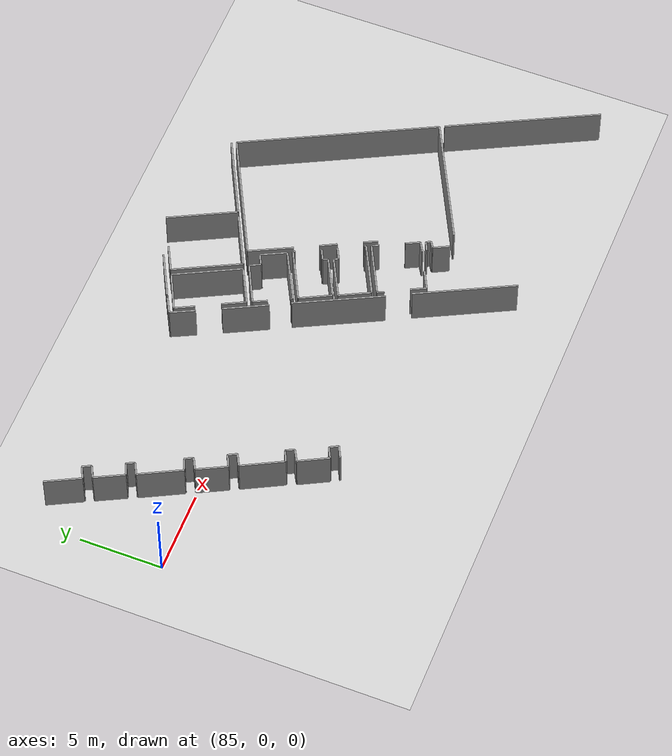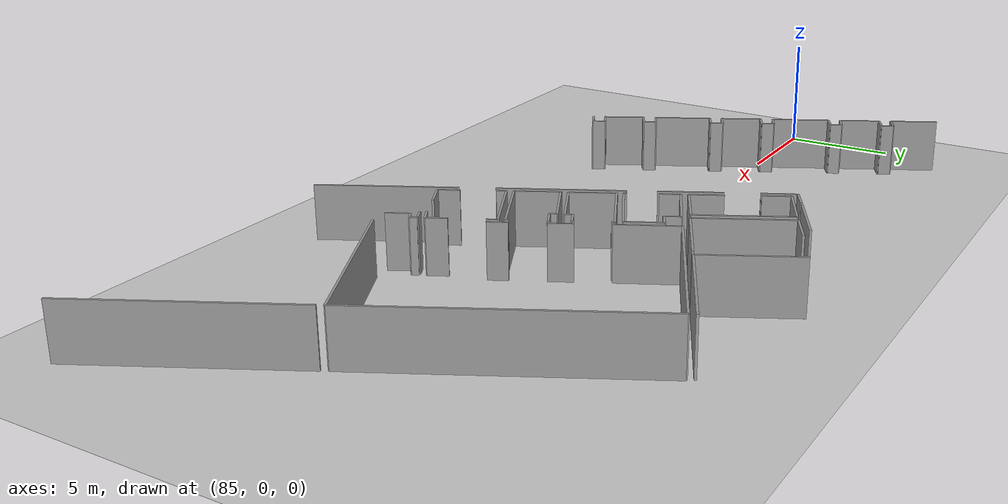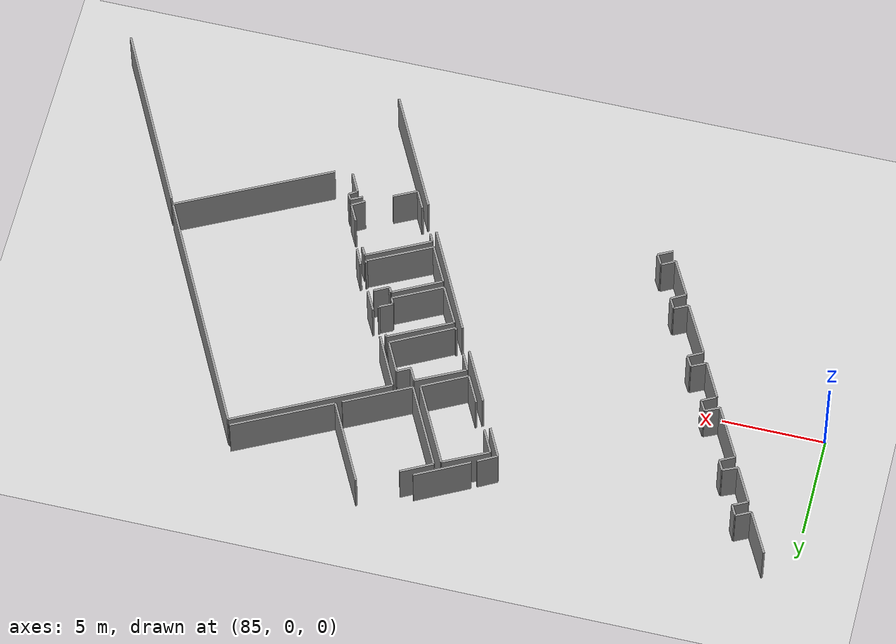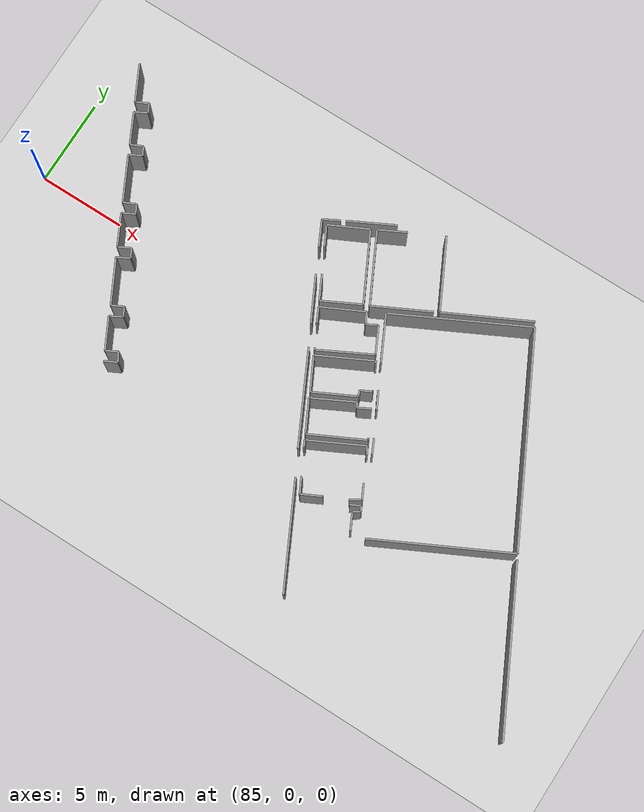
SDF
<sdf version="1.6">
 <world name="default">
  <model name="ground_plane">
   <static>1</static>
   <link name="link">
    <collision name="collision">
     <geometry><plane><normal>0 0 1</normal><size>100 100</size></plane></geometry>
     <surface><friction><ode><mu>100</mu><mu2>50</mu2></ode></friction></surface>
    </collision>
    <visual name="visual">
     <cast_shadows>0</cast_shadows>
     <geometry><plane><normal>0 0 1</normal><size>100 100</size></plane></geometry>
     <material>
      <script><uri>file://media/materials/scripts/gazebo.material</uri><name>Gazebo/Grey</name></script>
     </material>
    </visual>
   </link>
  </model>
  <model name="0510045925_40">
   <static>1</static>
   <link name="Wall_5">
    <collision name="Wall_5_Collision">
     <geometry><box><size>0.778104370099 0.1 2.5</size></box></geometry>
     <pose>0.389052185049 0 1.25 0 0 0</pose>
    </collision>
    <visual name="Wall_5_Visual">
     <pose>0.389052185049 0 1.25 0 0 0</pose>
     <geometry><box><size>0.778104370099 0.1 2.5</size></box></geometry>
     <material>
      <script><uri>file://media/materials/scripts/gazebo.material</uri><name>Gazebo/Grey</name></script>
      <ambient>1 1 1 1</ambient>
     </material>
    </visual>
    <pose>228.029288597 -108.321793863 0 0 0 0.473858778521</pose>
   </link>
   <link name="Wall_6">
    <collision name="Wall_6_Collision">
     <geometry><box><size>0.581597389892 0.1 2.5</size></box></geometry>
     <pose>0.290798694946 0 1.25 0 0 0</pose>
    </collision>
    <visual name="Wall_6_Visual">
     <pose>0.290798694946 0 1.25 0 0 0</pose>
     <geometry><box><size>0.581597389892 0.1 2.5</size></box></geometry>
     <material>
      <script><uri>file://media/materials/scripts/gazebo.material</uri><name>Gazebo/Grey</name></script>
      <ambient>1 1 1 1</ambient>
     </material>
    </visual>
    <pose>228.721656811 -107.966726733 0 0 0 2.0869654539</pose>
   </link>
   <link name="Wall_7">
    <collision name="Wall_7_Collision">
     <geometry><box><size>0.726857100754 0.1 2.5</size></box></geometry>
     <pose>0.363428550377 0 1.25 0 0 0</pose>
    </collision>
    <visual name="Wall_7_Visual">
     <pose>0.363428550377 0 1.25 0 0 0</pose>
     <geometry><box><size>0.726857100754 0.1 2.5</size></box></geometry>
     <material>
      <script><uri>file://media/materials/scripts/gazebo.material</uri><name>Gazebo/Grey</name></script>
      <ambient>1 1 1 1</ambient>
     </material>
    </visual>
    <pose>228.434608259 -107.460902008 0 0 0 -2.6538946999</pose>
   </link>
   <link name="Wall_8">
    <collision name="Wall_8_Collision">
     <geometry><box><size>1.91594491801 0.1 2.5</size></box></geometry>
     <pose>0.957972459005 0 1.25 0 0 0</pose>
    </collision>
    <visual name="Wall_8_Visual">
     <pose>0.957972459005 0 1.25 0 0 0</pose>
     <geometry><box><size>1.91594491801 0.1 2.5</size></box></geometry>
     <material>
      <script><uri>file://media/materials/scripts/gazebo.material</uri><name>Gazebo/Grey</name></script>
      <ambient>1 1 1 1</ambient>
     </material>
    </visual>
    <pose>227.792492576 -107.8015025 0 0 0 2.05363930257</pose>
   </link>
   <link name="Wall_9">
    <collision name="Wall_9_Collision">
     <geometry><box><size>0.787025181218 0.1 2.5</size></box></geometry>
     <pose>0.393512590609 0 1.25 0 0 0</pose>
    </collision>
    <visual name="Wall_9_Visual">
     <pose>0.393512590609 0 1.25 0 0 0</pose>
     <geometry><box><size>0.787025181218 0.1 2.5</size></box></geometry>
     <material>
      <script><uri>file://media/materials/scripts/gazebo.material</uri><name>Gazebo/Grey</name></script>
      <ambient>1 1 1 1</ambient>
     </material>
    </visual>
    <pose>226.902921246 -106.104591254 0 0 0 0.511546260567</pose>
   </link>
   <link name="Wall_10">
    <collision name="Wall_10_Collision">
     <geometry><box><size>0.563663164975 0.1 2.5</size></box></geometry>
     <pose>0.281831582488 0 1.25 0 0 0</pose>
    </collision>
    <visual name="Wall_10_Visual">
     <pose>0.281831582488 0 1.25 0 0 0</pose>
     <geometry><box><size>0.563663164975 0.1 2.5</size></box></geometry>
     <material>
      <script><uri>file://media/materials/scripts/gazebo.material</uri><name>Gazebo/Grey</name></script>
      <ambient>1 1 1 1</ambient>
     </material>
    </visual>
    <pose>227.589198244 -105.719321845 0 0 0 2.06324338436</pose>
   </link>
   <link name="Wall_11">
    <collision name="Wall_11_Collision">
     <geometry><box><size>0.741177250141 0.1 2.5</size></box></geometry>
     <pose>0.37058862507 0 1.25 0 0 0</pose>
    </collision>
    <visual name="Wall_11_Visual">
     <pose>0.37058862507 0 1.25 0 0 0</pose>
     <geometry><box><size>0.741177250141 0.1 2.5</size></box></geometry>
     <material>
      <script><uri>file://media/materials/scripts/gazebo.material</uri><name>Gazebo/Grey</name></script>
      <ambient>1 1 1 1</ambient>
     </material>
    </visual>
    <pose>227.322707545 -105.222633943 0 0 0 -2.6802421309</pose>
   </link>
   <link name="Wall_12">
    <collision name="Wall_12_Collision">
     <geometry><box><size>2.69067055951 0.1 2.5</size></box></geometry>
     <pose>1.34533527976 0 1.25 0 0 0</pose>
    </collision>
    <visual name="Wall_12_Visual">
     <pose>1.34533527976 0 1.25 0 0 0</pose>
     <geometry><box><size>2.69067055951 0.1 2.5</size></box></geometry>
     <material>
      <script><uri>file://media/materials/scripts/gazebo.material</uri><name>Gazebo/Grey</name></script>
      <ambient>1 1 1 1</ambient>
     </material>
    </visual>
    <pose>226.659018807 -105.552574808 0 0 0 2.05435607523</pose>
   </link>
   <link name="Wall_13">
    <collision name="Wall_13_Collision">
     <geometry><box><size>0.799349535759 0.1 2.5</size></box></geometry>
     <pose>0.399674767879 0 1.25 0 0 0</pose>
    </collision>
    <visual name="Wall_13_Visual">
     <pose>0.399674767879 0 1.25 0 0 0</pose>
     <geometry><box><size>0.799349535759 0.1 2.5</size></box></geometry>
     <material>
      <script><uri>file://media/materials/scripts/gazebo.material</uri><name>Gazebo/Grey</name></script>
      <ambient>1 1 1 1</ambient>
     </material>
    </visual>
    <pose>225.408035329 -103.170401766 0 0 0 0.484522292641</pose>
   </link>
   <link name="Wall_14">
    <collision name="Wall_14_Collision">
     <geometry><box><size>0.570283938303 0.1 2.5</size></box></geometry>
     <pose>0.285141969151 0 1.25 0 0 0</pose>
    </collision>
    <visual name="Wall_14_Visual">
     <pose>0.285141969151 0 1.25 0 0 0</pose>
     <geometry><box><size>0.570283938303 0.1 2.5</size></box></geometry>
     <material>
      <script><uri>file://media/materials/scripts/gazebo.material</uri><name>Gazebo/Grey</name></script>
      <ambient>1 1 1 1</ambient>
     </material>
    </visual>
    <pose>226.115377782 -102.798076191 0 0 0 2.0762522287</pose>
   </link>
   <link name="Wall_15">
    <collision name="Wall_15_Collision">
     <geometry><box><size>0.782158885172 0.1 2.5</size></box></geometry>
     <pose>0.391079442586 0 1.25 0 0 0</pose>
    </collision>
    <visual name="Wall_15_Visual">
     <pose>0.391079442586 0 1.25 0 0 0</pose>
     <geometry><box><size>0.782158885172 0.1 2.5</size></box></geometry>
     <material>
      <script><uri>file://media/materials/scripts/gazebo.material</uri><name>Gazebo/Grey</name></script>
      <ambient>1 1 1 1</ambient>
     </material>
    </visual>
    <pose>225.839242659 -102.299104084 0 0 0 -2.68273386301</pose>
   </link>
   <link name="Wall_16">
    <collision name="Wall_16_Collision">
     <geometry><box><size>1.90896719742 0.1 2.5</size></box></geometry>
     <pose>0.954483598711 0 1.25 0 0 0</pose>
    </collision>
    <visual name="Wall_16_Visual">
     <pose>0.954483598711 0 1.25 0 0 0</pose>
     <geometry><box><size>1.90896719742 0.1 2.5</size></box></geometry>
     <material>
      <script><uri>file://media/materials/scripts/gazebo.material</uri><name>Gazebo/Grey</name></script>
      <ambient>1 1 1 1</ambient>
     </material>
    </visual>
    <pose>225.137991422 -102.645541991 0 0 0 2.04312489266</pose>
   </link>
   <link name="Wall_17">
    <collision name="Wall_17_Collision">
     <geometry><box><size>0.782379565723 0.1 2.5</size></box></geometry>
     <pose>0.391189782861 0 1.25 0 0 0</pose>
    </collision>
    <visual name="Wall_17_Visual">
     <pose>0.391189782861 0 1.25 0 0 0</pose>
     <geometry><box><size>0.782379565723 0.1 2.5</size></box></geometry>
     <material>
      <script><uri>file://media/materials/scripts/gazebo.material</uri><name>Gazebo/Grey</name></script>
      <ambient>1 1 1 1</ambient>
     </material>
    </visual>
    <pose>224.269485546 -100.945585137 0 0 0 0.48787737505</pose>
   </link>
   <link name="Wall_18">
    <collision name="Wall_18_Collision">
     <geometry><box><size>0.561334838609 0.1 2.5</size></box></geometry>
     <pose>0.280667419305 0 1.25 0 0 0</pose>
    </collision>
    <visual name="Wall_18_Visual">
     <pose>0.280667419305 0 1.25 0 0 0</pose>
     <geometry><box><size>0.561334838609 0.1 2.5</size></box></geometry>
     <material>
      <script><uri>file://media/materials/scripts/gazebo.material</uri><name>Gazebo/Grey</name></script>
      <ambient>1 1 1 1</ambient>
     </material>
    </visual>
    <pose>224.960584757 -100.578843177 0 0 0 2.07732392966</pose>
   </link>
   <link name="Wall_19">
    <collision name="Wall_19_Collision">
     <geometry><box><size>0.754889877876 0.1 2.5</size></box></geometry>
     <pose>0.377444938938 0 1.25 0 0 0</pose>
    </collision>
    <visual name="Wall_19_Visual">
     <pose>0.377444938938 0 1.25 0 0 0</pose>
     <geometry><box><size>0.754889877876 0.1 2.5</size></box></geometry>
     <material>
      <script><uri>file://media/materials/scripts/gazebo.material</uri><name>Gazebo/Grey</name></script>
      <ambient>1 1 1 1</ambient>
     </material>
    </visual>
    <pose>224.688256643 -100.087992691 0 0 0 -2.70711847416</pose>
   </link>
   <link name="Wall_20">
    <collision name="Wall_20_Collision">
     <geometry><box><size>2.73524635126 0.1 2.5</size></box></geometry>
     <pose>1.36762317563 0 1.25 0 0 0</pose>
    </collision>
    <visual name="Wall_20_Visual">
     <pose>1.36762317563 0 1.25 0 0 0</pose>
     <geometry><box><size>2.73524635126 0.1 2.5</size></box></geometry>
     <material>
      <script><uri>file://media/materials/scripts/gazebo.material</uri><name>Gazebo/Grey</name></script>
      <ambient>1 1 1 1</ambient>
     </material>
    </visual>
    <pose>224.003502449 -100.405751123 0 0 0 2.04863620994</pose>
   </link>
   <link name="Wall_21">
    <collision name="Wall_21_Collision">
     <geometry><box><size>0.783026056674 0.1 2.5</size></box></geometry>
     <pose>0.391513028337 0 1.25 0 0 0</pose>
    </collision>
    <visual name="Wall_21_Visual">
     <pose>0.391513028337 0 1.25 0 0 0</pose>
     <geometry><box><size>0.783026056674 0.1 2.5</size></box></geometry>
     <material>
      <script><uri>file://media/materials/scripts/gazebo.material</uri><name>Gazebo/Grey</name></script>
      <ambient>1 1 1 1</ambient>
     </material>
    </visual>
    <pose>222.745666354 -97.9768787594 0 0 0 0.485972448017</pose>
   </link>
   <link name="Wall_22">
    <collision name="Wall_22_Collision">
     <geometry><box><size>0.527831800195 0.1 2.5</size></box></geometry>
     <pose>0.263915900097 0 1.25 0 0 0</pose>
    </collision>
    <visual name="Wall_22_Visual">
     <pose>0.263915900097 0 1.25 0 0 0</pose>
     <geometry><box><size>0.527831800195 0.1 2.5</size></box></geometry>
     <material>
      <script><uri>file://media/materials/scripts/gazebo.material</uri><name>Gazebo/Grey</name></script>
      <ambient>1 1 1 1</ambient>
     </material>
    </visual>
    <pose>223.438034568 -97.6111520012 0 0 0 2.05874545323</pose>
   </link>
   <link name="Wall_23">
    <collision name="Wall_23_Collision">
     <geometry><box><size>0.759749015765 0.1 2.5</size></box></geometry>
     <pose>0.379874507883 0 1.25 0 0 0</pose>
    </collision>
    <visual name="Wall_23_Visual">
     <pose>0.379874507883 0 1.25 0 0 0</pose>
     <geometry><box><size>0.759749015765 0.1 2.5</size></box></geometry>
     <material>
      <script><uri>file://media/materials/scripts/gazebo.material</uri><name>Gazebo/Grey</name></script>
      <ambient>1 1 1 1</ambient>
     </material>
    </visual>
    <pose>223.190578919 -97.1449201797 0 0 0 -2.72876139295</pose>
   </link>
   <link name="Wall_24">
    <collision name="Wall_24_Collision">
     <geometry><box><size>1.88806659486 0.1 2.5</size></box></geometry>
     <pose>0.944033297428 0 1.25 0 0 0</pose>
    </collision>
    <visual name="Wall_24_Visual">
     <pose>0.944033297428 0 1.25 0 0 0</pose>
     <geometry><box><size>1.88806659486 0.1 2.5</size></box></geometry>
     <material>
      <script><uri>file://media/materials/scripts/gazebo.material</uri><name>Gazebo/Grey</name></script>
      <ambient>1 1 1 1</ambient>
     </material>
    </visual>
    <pose>222.494657496 -97.4497347783 0 0 0 2.04213886628</pose>
   </link>
   <link name="Wall_25">
    <collision name="Wall_25_Collision">
     <geometry><box><size>0.787326807375 0.1 2.5</size></box></geometry>
     <pose>0.393663403687 0 1.25 0 0 0</pose>
    </collision>
    <visual name="Wall_25_Visual">
     <pose>0.393663403687 0 1.25 0 0 0</pose>
     <geometry><box><size>0.787326807375 0.1 2.5</size></box></geometry>
     <material>
      <script><uri>file://media/materials/scripts/gazebo.material</uri><name>Gazebo/Grey</name></script>
      <ambient>1 1 1 1</ambient>
     </material>
    </visual>
    <pose>221.63731885 -95.767543971 0 0 0 0.47691096038</pose>
   </link>
   <link name="Wall_26">
    <collision name="Wall_26_Collision">
     <geometry><box><size>0.560734072792 0.1 2.5</size></box></geometry>
     <pose>0.280367036396 0 1.25 0 0 0</pose>
    </collision>
    <visual name="Wall_26_Visual">
     <pose>0.280367036396 0 1.25 0 0 0</pose>
     <geometry><box><size>0.560734072792 0.1 2.5</size></box></geometry>
     <material>
      <script><uri>file://media/materials/scripts/gazebo.material</uri><name>Gazebo/Grey</name></script>
      <ambient>1 1 1 1</ambient>
     </material>
    </visual>
    <pose>222.336793482 -95.4061318241 0 0 0 2.04456504768</pose>
   </link>
   <link name="Wall_27">
    <collision name="Wall_27_Collision">
     <geometry><box><size>0.781128396925 0.1 2.5</size></box></geometry>
     <pose>0.390564198462 0 1.25 0 0 0</pose>
    </collision>
    <visual name="Wall_27_Visual">
     <pose>0.390564198462 0 1.25 0 0 0</pose>
     <geometry><box><size>0.781128396925 0.1 2.5</size></box></geometry>
     <material>
      <script><uri>file://media/materials/scripts/gazebo.material</uri><name>Gazebo/Grey</name></script>
      <ambient>1 1 1 1</ambient>
     </material>
    </visual>
    <pose>222.080962412 -94.9071597168 0 0 0 -2.67809035118</pose>
   </link>
   <link name="Wall_28">
    <collision name="Wall_28_Collision">
     <geometry><box><size>2.24060761237 0.1 2.5</size></box></geometry>
     <pose>1.12030380618 0 1.25 0 0 0</pose>
    </collision>
    <visual name="Wall_28_Visual">
     <pose>1.12030380618 0 1.25 0 0 0</pose>
     <geometry><box><size>2.24060761237 0.1 2.5</size></box></geometry>
     <material>
      <script><uri>file://media/materials/scripts/gazebo.material</uri><name>Gazebo/Grey</name></script>
      <ambient>1 1 1 1</ambient>
     </material>
    </visual>
    <pose>221.382249181 -95.2563894317 0 0 0 2.04675396799</pose>
   </link>
   <link name="Wall_205">
    <collision name="Wall_205_Collision">
     <geometry><box><size>4.27731627316 0.1 2.5</size></box></geometry>
     <pose>2.13865813658 0 1.25 0 0 0</pose>
    </collision>
    <visual name="Wall_205_Visual">
     <pose>2.13865813658 0 1.25 0 0 0</pose>
     <geometry><box><size>4.27731627316 0.1 2.5</size></box></geometry>
     <material>
      <script><uri>file://media/materials/scripts/gazebo.material</uri><name>Gazebo/Grey</name></script>
      <ambient>1 1 1 1</ambient>
     </material>
    </visual>
    <pose>238.416842212 -98.1030176899 0 0 0 2.03996346365</pose>
   </link>
   <link name="Wall_206">
    <collision name="Wall_206_Collision">
     <geometry><box><size>1.66259343177 0.1 2.5</size></box></geometry>
     <pose>0.831296715885 0 1.25 0 0 0</pose>
    </collision>
    <visual name="Wall_206_Visual">
     <pose>0.831296715885 0 1.25 0 0 0</pose>
     <geometry><box><size>1.66259343177 0.1 2.5</size></box></geometry>
     <material>
      <script><uri>file://media/materials/scripts/gazebo.material</uri><name>Gazebo/Grey</name></script>
      <ambient>1 1 1 1</ambient>
     </material>
    </visual>
    <pose>236.482881145 -94.2878860943 0 0 0 0.480169388332</pose>
   </link>
   <link name="Wall_209">
    <collision name="Wall_209_Collision">
     <geometry><box><size>3.46521680578 0.1 2.5</size></box></geometry>
     <pose>1.73260840289 0 1.25 0 0 0</pose>
    </collision>
    <visual name="Wall_209_Visual">
     <pose>1.73260840289 0 1.25 0 0 0</pose>
     <geometry><box><size>3.46521680578 0.1 2.5</size></box></geometry>
     <material>
      <script><uri>file://media/materials/scripts/gazebo.material</uri><name>Gazebo/Grey</name></script>
      <ambient>1 1 1 1</ambient>
     </material>
    </visual>
    <pose>241.505596305 -96.5322453745 0 0 0 -2.671131956</pose>
   </link>
   <link name="Wall_210">
    <collision name="Wall_210_Collision">
     <geometry><box><size>4.29735811285 0.1 2.5</size></box></geometry>
     <pose>2.14867905642 0 1.25 0 0 0</pose>
    </collision>
    <visual name="Wall_210_Visual">
     <pose>2.14867905642 0 1.25 0 0 0</pose>
     <geometry><box><size>4.29735811285 0.1 2.5</size></box></geometry>
     <material>
      <script><uri>file://media/materials/scripts/gazebo.material</uri><name>Gazebo/Grey</name></script>
      <ambient>1 1 1 1</ambient>
     </material>
    </visual>
    <pose>241.787315043 -96.3870713941 0 0 0 2.04223564288</pose>
   </link>
   <link name="Wall_214">
    <collision name="Wall_214_Collision">
     <geometry><box><size>5.15071164035 0.1 2.5</size></box></geometry>
     <pose>2.57535582017 0 1.25 0 0 0</pose>
    </collision>
    <visual name="Wall_214_Visual">
     <pose>2.57535582017 0 1.25 0 0 0</pose>
     <geometry><box><size>5.15071164035 0.1 2.5</size></box></geometry>
     <material>
      <script><uri>file://media/materials/scripts/gazebo.material</uri><name>Gazebo/Grey</name></script>
      <ambient>1 1 1 1</ambient>
     </material>
    </visual>
    <pose>246.383645085 -94.0625111038 0 0 0 -2.67336145872</pose>
   </link>
   <link name="Wall_221">
    <collision name="Wall_221_Collision">
     <geometry><box><size>2.83431875262 0.1 2.5</size></box></geometry>
     <pose>1.41715937631 0 1.25 0 0 0</pose>
    </collision>
    <visual name="Wall_221_Visual">
     <pose>1.41715937631 0 1.25 0 0 0</pose>
     <geometry><box><size>2.83431875262 0.1 2.5</size></box></geometry>
     <material>
      <script><uri>file://media/materials/scripts/gazebo.material</uri><name>Gazebo/Grey</name></script>
      <ambient>1 1 1 1</ambient>
     </material>
    </visual>
    <pose>234.777340677 -94.7825435903 0 0 0 0.477183567858</pose>
   </link>
   <link name="Wall_222">
    <collision name="Wall_222_Collision">
     <geometry><box><size>2.38766779166 0.1 2.5</size></box></geometry>
     <pose>1.19383389583 0 1.25 0 0 0</pose>
    </collision>
    <visual name="Wall_222_Visual">
     <pose>1.19383389583 0 1.25 0 0 0</pose>
     <geometry><box><size>2.38766779166 0.1 2.5</size></box></geometry>
     <material>
      <script><uri>file://media/materials/scripts/gazebo.material</uri><name>Gazebo/Grey</name></script>
      <ambient>1 1 1 1</ambient>
     </material>
    </visual>
    <pose>234.026090708 -95.5208497246 0 0 0 0.45993969673</pose>
   </link>
   <link name="Wall_223">
    <collision name="Wall_223_Collision">
     <geometry><box><size>4.22908114276 0.1 2.5</size></box></geometry>
     <pose>2.11454057138 0 1.25 0 0 0</pose>
    </collision>
    <visual name="Wall_223_Visual">
     <pose>2.11454057138 0 1.25 0 0 0</pose>
     <geometry><box><size>4.22908114276 0.1 2.5</size></box></geometry>
     <material>
      <script><uri>file://media/materials/scripts/gazebo.material</uri><name>Gazebo/Grey</name></script>
      <ambient>1 1 1 1</ambient>
     </material>
    </visual>
    <pose>236.165630314 -94.4609781478 0 0 0 -1.09786238857</pose>
   </link>
   <link name="Wall_224">
    <collision name="Wall_224_Collision">
     <geometry><box><size>2.37933894703 0.1 2.5</size></box></geometry>
     <pose>1.18966947351 0 1.25 0 0 0</pose>
    </collision>
    <visual name="Wall_224_Visual">
     <pose>1.18966947351 0 1.25 0 0 0</pose>
     <geometry><box><size>2.37933894703 0.1 2.5</size></box></geometry>
     <material>
      <script><uri>file://media/materials/scripts/gazebo.material</uri><name>Gazebo/Grey</name></script>
      <ambient>1 1 1 1</ambient>
     </material>
    </visual>
    <pose>238.091977361 -98.2258572117 0 0 0 -2.66496929275</pose>
   </link>
   <link name="Wall_225">
    <collision name="Wall_225_Collision">
     <geometry><box><size>1.48373040919 0.1 2.5</size></box></geometry>
     <pose>0.741865204594 0 1.25 0 0 0</pose>
    </collision>
    <visual name="Wall_225_Visual">
     <pose>0.741865204594 0 1.25 0 0 0</pose>
     <geometry><box><size>1.48373040919 0.1 2.5</size></box></geometry>
     <material>
      <script><uri>file://media/materials/scripts/gazebo.material</uri><name>Gazebo/Grey</name></script>
      <ambient>1 1 1 1</ambient>
     </material>
    </visual>
    <pose>235.977817822 -99.3174538717 0 0 0 2.03933985751</pose>
   </link>
   <link name="Wall_226">
    <collision name="Wall_226_Collision">
     <geometry><box><size>1.24356690291 0.1 2.5</size></box></geometry>
     <pose>0.621783451455 0 1.25 0 0 0</pose>
    </collision>
    <visual name="Wall_226_Visual">
     <pose>0.621783451455 0 1.25 0 0 0</pose>
     <geometry><box><size>1.24356690291 0.1 2.5</size></box></geometry>
     <material>
      <script><uri>file://media/materials/scripts/gazebo.material</uri><name>Gazebo/Grey</name></script>
      <ambient>1 1 1 1</ambient>
     </material>
    </visual>
    <pose>234.589528185 -96.6294510292 0 0 0 2.0410155827</pose>
   </link>
   <link name="Wall_227">
    <collision name="Wall_227_Collision">
     <geometry><box><size>2.58731230767 0.1 2.5</size></box></geometry>
     <pose>1.29365615383 0 1.25 0 0 0</pose>
    </collision>
    <visual name="Wall_227_Visual">
     <pose>1.29365615383 0 1.25 0 0 0</pose>
     <geometry><box><size>2.58731230767 0.1 2.5</size></box></geometry>
     <material>
      <script><uri>file://media/materials/scripts/gazebo.material</uri><name>Gazebo/Grey</name></script>
      <ambient>1 1 1 1</ambient>
     </material>
    </visual>
    <pose>236.127560214 -99.617953859 0 0 0 0.461015458905</pose>
   </link>
   <link name="Wall_228">
    <collision name="Wall_228_Collision">
     <geometry><box><size>0.70123631037 0.1 2.5</size></box></geometry>
     <pose>0.350618155185 0 1.25 0 0 0</pose>
    </collision>
    <visual name="Wall_228_Visual">
     <pose>0.350618155185 0 1.25 0 0 0</pose>
     <geometry><box><size>0.70123631037 0.1 2.5</size></box></geometry>
     <material>
      <script><uri>file://media/materials/scripts/gazebo.material</uri><name>Gazebo/Grey</name></script>
      <ambient>1 1 1 1</ambient>
     </material>
    </visual>
    <pose>238.444760285 -98.4669678435 0 0 0 -1.08092416128</pose>
   </link>
   <link name="Wall_229">
    <collision name="Wall_229_Collision">
     <geometry><box><size>0.69720848903 0.1 2.5</size></box></geometry>
     <pose>0.348604244515 0 1.25 0 0 0</pose>
    </collision>
    <visual name="Wall_229_Visual">
     <pose>0.348604244515 0 1.25 0 0 0</pose>
     <geometry><box><size>0.69720848903 0.1 2.5</size></box></geometry>
     <material>
      <script><uri>file://media/materials/scripts/gazebo.material</uri><name>Gazebo/Grey</name></script>
      <ambient>1 1 1 1</ambient>
     </material>
    </visual>
    <pose>238.77470115 -99.0857338646 0 0 0 0.492955175945</pose>
   </link>
   <link name="Wall_230">
    <collision name="Wall_230_Collision">
     <geometry><box><size>1.63285590378 0.1 2.5</size></box></geometry>
     <pose>0.81642795189 0 1.25 0 0 0</pose>
    </collision>
    <visual name="Wall_230_Visual">
     <pose>0.81642795189 0 1.25 0 0 0</pose>
     <geometry><box><size>1.63285590378 0.1 2.5</size></box></geometry>
     <material>
      <script><uri>file://media/materials/scripts/gazebo.material</uri><name>Gazebo/Grey</name></script>
      <ambient>1 1 1 1</ambient>
     </material>
    </visual>
    <pose>239.388898759 -98.7557930002 0 0 0 -1.10666213365</pose>
   </link>
   <link name="Wall_231">
    <collision name="Wall_231_Collision">
     <geometry><box><size>3.27823236941 0.1 2.5</size></box></geometry>
     <pose>1.63911618471 0 1.25 0 0 0</pose>
    </collision>
    <visual name="Wall_231_Visual">
     <pose>1.63911618471 0 1.25 0 0 0</pose>
     <geometry><box><size>3.27823236941 0.1 2.5</size></box></geometry>
     <material>
      <script><uri>file://media/materials/scripts/gazebo.material</uri><name>Gazebo/Grey</name></script>
      <ambient>1 1 1 1</ambient>
     </material>
    </visual>
    <pose>240.119844674 -100.215908226 0 0 0 -2.65876257941</pose>
   </link>
   <link name="Wall_232">
    <collision name="Wall_232_Collision">
     <geometry><box><size>0.131634247658 0.1 2.5</size></box></geometry>
     <pose>0.0658171238288 0 1.25 0 0 0</pose>
    </collision>
    <visual name="Wall_232_Visual">
     <pose>0.0658171238288 0 1.25 0 0 0</pose>
     <geometry><box><size>0.131634247658 0.1 2.5</size></box></geometry>
     <material>
      <script><uri>file://media/materials/scripts/gazebo.material</uri><name>Gazebo/Grey</name></script>
      <ambient>1 1 1 1</ambient>
     </material>
    </visual>
    <pose>237.216365067 -101.737950813 0 0 0 2.16414647295</pose>
   </link>
   <link name="Wall_233">
    <collision name="Wall_233_Collision">
     <geometry><box><size>0.90010988175 0.1 2.5</size></box></geometry>
     <pose>0.450054940875 0 1.25 0 0 0</pose>
    </collision>
    <visual name="Wall_233_Visual">
     <pose>0.450054940875 0 1.25 0 0 0</pose>
     <geometry><box><size>0.90010988175 0.1 2.5</size></box></geometry>
     <material>
      <script><uri>file://media/materials/scripts/gazebo.material</uri><name>Gazebo/Grey</name></script>
      <ambient>1 1 1 1</ambient>
     </material>
    </visual>
    <pose>236.523489252 -100.426308977 0 0 0 2.02624739805</pose>
   </link>
   <link name="Wall_234">
    <collision name="Wall_234_Collision">
     <geometry><box><size>2.02104688602 0.1 2.5</size></box></geometry>
     <pose>1.01052344301 0 1.25 0 0 0</pose>
    </collision>
    <visual name="Wall_234_Visual">
     <pose>1.01052344301 0 1.25 0 0 0</pose>
     <geometry><box><size>2.02104688602 0.1 2.5</size></box></geometry>
     <material>
      <script><uri>file://media/materials/scripts/gazebo.material</uri><name>Gazebo/Grey</name></script>
      <ambient>1 1 1 1</ambient>
     </material>
    </visual>
    <pose>238.269637826 -103.802873024 0 0 0 2.04977636711</pose>
   </link>
   <link name="Wall_235">
    <collision name="Wall_235_Collision">
     <geometry><box><size>3.33983407108 0.1 2.5</size></box></geometry>
     <pose>1.66991703554 0 1.25 0 0 0</pose>
    </collision>
    <visual name="Wall_235_Visual">
     <pose>1.66991703554 0 1.25 0 0 0</pose>
     <geometry><box><size>3.33983407108 0.1 2.5</size></box></geometry>
     <material>
      <script><uri>file://media/materials/scripts/gazebo.material</uri><name>Gazebo/Grey</name></script>
      <ambient>1 1 1 1</ambient>
     </material>
    </visual>
    <pose>237.338189386 -102.009263724 0 0 0 0.472075903171</pose>
   </link>
   <link name="Wall_236">
    <collision name="Wall_236_Collision">
     <geometry><box><size>0.133438580926 0.1 2.5</size></box></geometry>
     <pose>0.066719290463 0 1.25 0 0 0</pose>
    </collision>
    <visual name="Wall_236_Visual">
     <pose>0.066719290463 0 1.25 0 0 0</pose>
     <geometry><box><size>0.133438580926 0.1 2.5</size></box></geometry>
     <material>
      <script><uri>file://media/materials/scripts/gazebo.material</uri><name>Gazebo/Grey</name></script>
      <ambient>1 1 1 1</ambient>
     </material>
    </visual>
    <pose>240.312733179 -100.490520545 0 0 0 -1.00917282712</pose>
   </link>
   <link name="Wall_237">
    <collision name="Wall_237_Collision">
     <geometry><box><size>0.0833336231725 0.1 2.5</size></box></geometry>
     <pose>0.0416668115862 0 1.25 0 0 0</pose>
    </collision>
    <visual name="Wall_237_Visual">
     <pose>0.0416668115862 0 1.25 0 0 0</pose>
     <geometry><box><size>0.0833336231725 0.1 2.5</size></box></geometry>
     <material>
      <script><uri>file://media/materials/scripts/gazebo.material</uri><name>Gazebo/Grey</name></script>
      <ambient>1 1 1 1</ambient>
     </material>
    </visual>
    <pose>241.028451055 -101.936930535 0 0 0 -1.13030534076</pose>
   </link>
   <link name="Wall_238">
    <collision name="Wall_238_Collision">
     <geometry><box><size>0.70031509564 0.1 2.5</size></box></geometry>
     <pose>0.35015754782 0 1.25 0 0 0</pose>
    </collision>
    <visual name="Wall_238_Visual">
     <pose>0.35015754782 0 1.25 0 0 0</pose>
     <geometry><box><size>0.70031509564 0.1 2.5</size></box></geometry>
     <material>
      <script><uri>file://media/materials/scripts/gazebo.material</uri><name>Gazebo/Grey</name></script>
      <ambient>1 1 1 1</ambient>
     </material>
    </visual>
    <pose>241.063983148 -102.012309332 0 0 0 -2.67956578871</pose>
   </link>
   <link name="Wall_239">
    <collision name="Wall_239_Collision">
     <geometry><box><size>0.333976988393 0.1 2.5</size></box></geometry>
     <pose>0.166988494197 0 1.25 0 0 0</pose>
    </collision>
    <visual name="Wall_239_Visual">
     <pose>0.166988494197 0 1.25 0 0 0</pose>
     <geometry><box><size>0.333976988393 0.1 2.5</size></box></geometry>
     <material>
      <script><uri>file://media/materials/scripts/gazebo.material</uri><name>Gazebo/Grey</name></script>
      <ambient>1 1 1 1</ambient>
     </material>
    </visual>
    <pose>240.437095505 -102.32448415 0 0 0 -1.14794240066</pose>
   </link>
   <link name="Wall_240">
    <collision name="Wall_240_Collision">
     <geometry><box><size>2.58624029531 0.1 2.5</size></box></geometry>
     <pose>1.29312014765 0 1.25 0 0 0</pose>
    </collision>
    <visual name="Wall_240_Visual">
     <pose>1.29312014765 0 1.25 0 0 0</pose>
     <geometry><box><size>2.58624029531 0.1 2.5</size></box></geometry>
     <material>
      <script><uri>file://media/materials/scripts/gazebo.material</uri><name>Gazebo/Grey</name></script>
      <ambient>1 1 1 1</ambient>
     </material>
    </visual>
    <pose>240.574147864 -102.629044948 0 0 0 -2.67048413409</pose>
   </link>
   <link name="Wall_241">
    <collision name="Wall_241_Collision">
     <geometry><box><size>1.97302155722 0.1 2.5</size></box></geometry>
     <pose>0.986510778612 0 1.25 0 0 0</pose>
    </collision>
    <visual name="Wall_241_Visual">
     <pose>0.986510778612 0 1.25 0 0 0</pose>
     <geometry><box><size>1.97302155722 0.1 2.5</size></box></geometry>
     <material>
      <script><uri>file://media/materials/scripts/gazebo.material</uri><name>Gazebo/Grey</name></script>
      <ambient>1 1 1 1</ambient>
     </material>
    </visual>
    <pose>239.287378493 -105.865003426 0 0 0 2.04502920376</pose>
   </link>
   <link name="Wall_242">
    <collision name="Wall_242_Collision">
     <geometry><box><size>2.58004899284 0.1 2.5</size></box></geometry>
     <pose>1.29002449642 0 1.25 0 0 0</pose>
    </collision>
    <visual name="Wall_242_Visual">
     <pose>1.29002449642 0 1.25 0 0 0</pose>
     <geometry><box><size>2.58004899284 0.1 2.5</size></box></geometry>
     <material>
      <script><uri>file://media/materials/scripts/gazebo.material</uri><name>Gazebo/Grey</name></script>
      <ambient>1 1 1 1</ambient>
     </material>
    </visual>
    <pose>238.386386132 -104.109718027 0 0 0 0.477197749769</pose>
   </link>
   <link name="Wall_243">
    <collision name="Wall_243_Collision">
     <geometry><box><size>0.303028215887 0.1 2.5</size></box></geometry>
     <pose>0.151514107943 0 1.25 0 0 0</pose>
    </collision>
    <visual name="Wall_243_Visual">
     <pose>0.151514107943 0 1.25 0 0 0</pose>
     <geometry><box><size>0.303028215887 0.1 2.5</size></box></geometry>
     <material>
      <script><uri>file://media/materials/scripts/gazebo.material</uri><name>Gazebo/Grey</name></script>
      <ambient>1 1 1 1</ambient>
     </material>
    </visual>
    <pose>240.678206137 -102.924722723 0 0 0 -1.0539356854</pose>
   </link>
   <link name="Wall_244">
    <collision name="Wall_244_Collision">
     <geometry><box><size>0.787144503482 0.1 2.5</size></box></geometry>
     <pose>0.393572251741 0 1.25 0 0 0</pose>
    </collision>
    <visual name="Wall_244_Visual">
     <pose>0.393572251741 0 1.25 0 0 0</pose>
     <geometry><box><size>0.787144503482 0.1 2.5</size></box></geometry>
     <material>
      <script><uri>file://media/materials/scripts/gazebo.material</uri><name>Gazebo/Grey</name></script>
      <ambient>1 1 1 1</ambient>
     </material>
    </visual>
    <pose>240.827948529 -103.188167813 0 0 0 0.480663560992</pose>
   </link>
   <link name="Wall_245">
    <collision name="Wall_245_Collision">
     <geometry><box><size>0.124539342352 0.1 2.5</size></box></geometry>
     <pose>0.0622696711761 0 1.25 0 0 0</pose>
    </collision>
    <visual name="Wall_245_Visual">
     <pose>0.0622696711761 0 1.25 0 0 0</pose>
     <geometry><box><size>0.124539342352 0.1 2.5</size></box></geometry>
     <material>
      <script><uri>file://media/materials/scripts/gazebo.material</uri><name>Gazebo/Grey</name></script>
      <ambient>1 1 1 1</ambient>
     </material>
    </visual>
    <pose>242.216238167 -104.246008985 0 0 0 -1.0597390149</pose>
   </link>
   <link name="Wall_246">
    <collision name="Wall_246_Collision">
     <geometry><box><size>3.34961884048 0.1 2.5</size></box></geometry>
     <pose>1.67480942024 0 1.25 0 0 0</pose>
    </collision>
    <visual name="Wall_246_Visual">
     <pose>1.67480942024 0 1.25 0 0 0</pose>
     <geometry><box><size>3.34961884048 0.1 2.5</size></box></geometry>
     <material>
      <script><uri>file://media/materials/scripts/gazebo.material</uri><name>Gazebo/Grey</name></script>
      <ambient>1 1 1 1</ambient>
     </material>
    </visual>
    <pose>242.277150326 -104.354635669 0 0 0 -2.67381101643</pose>
   </link>
   <link name="Wall_247">
    <collision name="Wall_247_Collision">
     <geometry><box><size>0.961173510796 0.1 2.5</size></box></geometry>
     <pose>0.480586755398 0 1.25 0 0 0</pose>
    </collision>
    <visual name="Wall_247_Visual">
     <pose>0.480586755398 0 1.25 0 0 0</pose>
     <geometry><box><size>0.961173510796 0.1 2.5</size></box></geometry>
     <material>
      <script><uri>file://media/materials/scripts/gazebo.material</uri><name>Gazebo/Grey</name></script>
      <ambient>1 1 1 1</ambient>
     </material>
    </visual>
    <pose>240.769574376 -108.738788356 0 0 0 2.04223782616</pose>
   </link>
   <link name="Wall_248">
    <collision name="Wall_248_Collision">
     <geometry><box><size>0.421142800994 0.1 2.5</size></box></geometry>
     <pose>0.210571400497 0 1.25 0 0 0</pose>
    </collision>
    <visual name="Wall_248_Visual">
     <pose>0.210571400497 0 1.25 0 0 0</pose>
     <geometry><box><size>0.421142800994 0.1 2.5</size></box></geometry>
     <material>
      <script><uri>file://media/materials/scripts/gazebo.material</uri><name>Gazebo/Grey</name></script>
      <ambient>1 1 1 1</ambient>
     </material>
    </visual>
    <pose>239.609705337 -106.528945966 0 0 0 2.01962022385</pose>
   </link>
   <link name="Wall_249">
    <collision name="Wall_249_Collision">
     <geometry><box><size>3.33296649568 0.1 2.5</size></box></geometry>
     <pose>1.66648324784 0 1.25 0 0 0</pose>
    </collision>
    <visual name="Wall_249_Visual">
     <pose>1.66648324784 0 1.25 0 0 0</pose>
     <geometry><box><size>3.33296649568 0.1 2.5</size></box></geometry>
     <material>
      <script><uri>file://media/materials/scripts/gazebo.material</uri><name>Gazebo/Grey</name></script>
      <ambient>1 1 1 1</ambient>
     </material>
    </visual>
    <pose>239.426968859 -106.149513972 0 0 0 0.469709379188</pose>
   </link>
   <link name="Wall_250">
    <collision name="Wall_250_Collision">
     <geometry><box><size>0.465228734126 0.1 2.5</size></box></geometry>
     <pose>0.232614367063 0 1.25 0 0 0</pose>
    </collision>
    <visual name="Wall_250_Visual">
     <pose>0.232614367063 0 1.25 0 0 0</pose>
     <geometry><box><size>0.465228734126 0.1 2.5</size></box></geometry>
     <material>
      <script><uri>file://media/materials/scripts/gazebo.material</uri><name>Gazebo/Grey</name></script>
      <ambient>1 1 1 1</ambient>
     </material>
    </visual>
    <pose>242.398974645 -104.640922819 0 0 0 -1.07005636324</pose>
   </link>
   <link name="Wall_251">
    <collision name="Wall_251_Collision">
     <geometry><box><size>0.906232725138 0.1 2.5</size></box></geometry>
     <pose>0.453116362569 0 1.25 0 0 0</pose>
    </collision>
    <visual name="Wall_251_Visual">
     <pose>0.453116362569 0 1.25 0 0 0</pose>
     <geometry><box><size>0.906232725138 0.1 2.5</size></box></geometry>
     <material>
      <script><uri>file://media/materials/scripts/gazebo.material</uri><name>Gazebo/Grey</name></script>
      <ambient>1 1 1 1</ambient>
     </material>
    </visual>
    <pose>243.297428999 -106.426918099 0 0 0 -1.09988431652</pose>
   </link>
   <link name="Wall_252">
    <collision name="Wall_252_Collision">
     <geometry><box><size>0.687941438192 0.1 2.5</size></box></geometry>
     <pose>0.343970719096 0 1.25 0 0 0</pose>
    </collision>
    <visual name="Wall_252_Visual">
     <pose>0.343970719096 0 1.25 0 0 0</pose>
     <geometry><box><size>0.687941438192 0.1 2.5</size></box></geometry>
     <material>
      <script><uri>file://media/materials/scripts/gazebo.material</uri><name>Gazebo/Grey</name></script>
      <ambient>1 1 1 1</ambient>
     </material>
    </visual>
    <pose>243.708586076 -107.234511814 0 0 0 -2.60528575272</pose>
   </link>
   <link name="Wall_253">
    <collision name="Wall_253_Collision">
     <geometry><box><size>1.23969100422 0.1 2.5</size></box></geometry>
     <pose>0.619845502112 0 1.25 0 0 0</pose>
    </collision>
    <visual name="Wall_253_Visual">
     <pose>0.619845502112 0 1.25 0 0 0</pose>
     <geometry><box><size>1.23969100422 0.1 2.5</size></box></geometry>
     <material>
      <script><uri>file://media/materials/scripts/gazebo.material</uri><name>Gazebo/Grey</name></script>
      <ambient>1 1 1 1</ambient>
     </material>
    </visual>
    <pose>241.876145276 -108.179919291 0 0 0 -2.67391650019</pose>
   </link>
   <link name="Wall_254">
    <collision name="Wall_254_Collision">
     <geometry><box><size>8.01543723 0.1 2.5</size></box></geometry>
     <pose>4.007718615 0 1.25 0 0 0</pose>
    </collision>
    <visual name="Wall_254_Visual">
     <pose>4.007718615 0 1.25 0 0 0</pose>
     <geometry><box><size>8.01543723 0.1 2.5</size></box></geometry>
     <material>
      <script><uri>file://media/materials/scripts/gazebo.material</uri><name>Gazebo/Grey</name></script>
      <ambient>1 1 1 1</ambient>
     </material>
    </visual>
    <pose>239.373670719 -97.9761173574 0 0 0 0.470501375395</pose>
   </link>
   <link name="Wall_255">
    <collision name="Wall_255_Collision">
     <geometry><box><size>12.2685529928 0.1 2.5</size></box></geometry>
     <pose>6.1342764964 0 1.25 0 0 0</pose>
    </collision>
    <visual name="Wall_255_Visual">
     <pose>6.1342764964 0 1.25 0 0 0</pose>
     <geometry><box><size>12.2685529928 0.1 2.5</size></box></geometry>
     <material>
      <script><uri>file://media/materials/scripts/gazebo.material</uri><name>Gazebo/Grey</name></script>
      <ambient>1 1 1 1</ambient>
     </material>
    </visual>
    <pose>246.518159438 -94.3424532372 0 0 0 -1.09852616814</pose>
   </link>
   <link name="Wall_256">
    <collision name="Wall_256_Collision">
     <geometry><box><size>8.02348324148 0.1 2.5</size></box></geometry>
     <pose>4.01174162074 0 1.25 0 0 0</pose>
    </collision>
    <visual name="Wall_256_Visual">
     <pose>4.01174162074 0 1.25 0 0 0</pose>
     <geometry><box><size>8.02348324148 0.1 2.5</size></box></geometry>
     <material>
      <script><uri>file://media/materials/scripts/gazebo.material</uri><name>Gazebo/Grey</name></script>
      <ambient>1 1 1 1</ambient>
     </material>
    </visual>
    <pose>252.09923606 -105.268064262 0 0 0 -2.67401234549</pose>
   </link>
   <link name="Wall_258">
    <collision name="Wall_258_Collision">
     <geometry><box><size>0.878210044572 0.1 2.5</size></box></geometry>
     <pose>0.439105022286 0 1.25 0 0 0</pose>
    </collision>
    <visual name="Wall_258_Visual">
     <pose>0.439105022286 0 1.25 0 0 0</pose>
     <geometry><box><size>0.878210044572 0.1 2.5</size></box></geometry>
     <material>
      <script><uri>file://media/materials/scripts/gazebo.material</uri><name>Gazebo/Grey</name></script>
      <ambient>1 1 1 1</ambient>
     </material>
    </visual>
    <pose>242.853277836 -104.89294688 0 0 0 2.01596103561</pose>
   </link>
   <link name="Wall_259">
    <collision name="Wall_259_Collision">
     <geometry><box><size>1.06688924608 0.1 2.5</size></box></geometry>
     <pose>0.533444623039 0 1.25 0 0 0</pose>
    </collision>
    <visual name="Wall_259_Visual">
     <pose>0.533444623039 0 1.25 0 0 0</pose>
     <geometry><box><size>1.06688924608 0.1 2.5</size></box></geometry>
     <material>
      <script><uri>file://media/materials/scripts/gazebo.material</uri><name>Gazebo/Grey</name></script>
      <ambient>1 1 1 1</ambient>
     </material>
    </visual>
    <pose>241.77462501 -102.721682191 0 0 0 2.05316913574</pose>
   </link>
   <link name="Wall_260">
    <collision name="Wall_260_Collision">
     <geometry><box><size>2.73996596547 0.1 2.5</size></box></geometry>
     <pose>1.36998298273 0 1.25 0 0 0</pose>
    </collision>
    <visual name="Wall_260_Visual">
     <pose>1.36998298273 0 1.25 0 0 0</pose>
     <geometry><box><size>2.73996596547 0.1 2.5</size></box></geometry>
     <material>
      <script><uri>file://media/materials/scripts/gazebo.material</uri><name>Gazebo/Grey</name></script>
      <ambient>1 1 1 1</ambient>
     </material>
    </visual>
    <pose>240.596989924 -100.427831781 0 0 0 2.03361543557</pose>
   </link>
   <link name="Wall_263">
    <collision name="Wall_263_Collision">
     <geometry><box><size>0.614510899704 0.1 2.5</size></box></geometry>
     <pose>0.307255449852 0 1.25 0 0 0</pose>
    </collision>
    <visual name="Wall_263_Visual">
     <pose>0.307255449852 0 1.25 0 0 0</pose>
     <geometry><box><size>0.614510899704 0.1 2.5</size></box></geometry>
     <material>
      <script><uri>file://media/materials/scripts/gazebo.material</uri><name>Gazebo/Grey</name></script>
      <ambient>1 1 1 1</ambient>
     </material>
    </visual>
    <pose>243.284738966 -107.800487297 0 0 0 0.459584092394</pose>
   </link>
   <link name="Wall_264">
    <collision name="Wall_264_Collision">
     <geometry><box><size>0.310781893716 0.1 2.5</size></box></geometry>
     <pose>0.155390946858 0 1.25 0 0 0</pose>
    </collision>
    <visual name="Wall_264_Visual">
     <pose>0.155390946858 0 1.25 0 0 0</pose>
     <geometry><box><size>0.310781893716 0.1 2.5</size></box></geometry>
     <material>
      <script><uri>file://media/materials/scripts/gazebo.material</uri><name>Gazebo/Grey</name></script>
      <ambient>1 1 1 1</ambient>
     </material>
    </visual>
    <pose>243.835486409 -107.527905383 0 0 0 -1.06806045039</pose>
   </link>
   <link name="Wall_265">
    <collision name="Wall_265_Collision">
     <geometry><box><size>0.446899371646 0.1 2.5</size></box></geometry>
     <pose>0.223449685823 0 1.25 0 0 0</pose>
    </collision>
    <visual name="Wall_265_Visual">
     <pose>0.223449685823 0 1.25 0 0 0</pose>
     <geometry><box><size>0.446899371646 0.1 2.5</size></box></geometry>
     <material>
      <script><uri>file://media/materials/scripts/gazebo.material</uri><name>Gazebo/Grey</name></script>
      <ambient>1 1 1 1</ambient>
     </material>
    </visual>
    <pose>243.985228801 -107.800233497 0 0 0 -2.56902675699</pose>
   </link>
   <link name="Wall_266">
    <collision name="Wall_266_Collision">
     <geometry><box><size>1.03084244967 0.1 2.5</size></box></geometry>
     <pose>0.515421224837 0 1.25 0 0 0</pose>
    </collision>
    <visual name="Wall_266_Visual">
     <pose>0.515421224837 0 1.25 0 0 0</pose>
     <geometry><box><size>1.03084244967 0.1 2.5</size></box></geometry>
     <material>
      <script><uri>file://media/materials/scripts/gazebo.material</uri><name>Gazebo/Grey</name></script>
      <ambient>1 1 1 1</ambient>
     </material>
    </visual>
    <pose>243.609603817 -108.042359331 0 0 0 -1.10340506649</pose>
   </link>
   <link name="Wall_303">
    <collision name="Wall_303_Collision">
     <geometry><box><size>9.50793877446 0.1 2.5</size></box></geometry>
     <pose>4.75396938723 0 1.25 0 0 0</pose>
    </collision>
    <visual name="Wall_303_Visual">
     <pose>4.75396938723 0 1.25 0 0 0</pose>
     <geometry><box><size>9.50793877446 0.1 2.5</size></box></geometry>
     <material>
      <script><uri>file://media/materials/scripts/gazebo.material</uri><name>Gazebo/Grey</name></script>
      <ambient>1 1 1 1</ambient>
     </material>
    </visual>
    <pose>252.243902439 -105.539377173 0 0 0 -1.10008152891</pose>
   </link>
   <link name="Wall_322">
    <collision name="Wall_322_Collision">
     <geometry><box><size>1.01925933103 0.1 2.5</size></box></geometry>
     <pose>0.509629665517 0 1.25 0 0 0</pose>
    </collision>
    <visual name="Wall_322_Visual">
     <pose>0.509629665517 0 1.25 0 0 0</pose>
     <geometry><box><size>1.01925933103 0.1 2.5</size></box></geometry>
     <material>
      <script><uri>file://media/materials/scripts/gazebo.material</uri><name>Gazebo/Grey</name></script>
      <ambient>1 1 1 1</ambient>
     </material>
    </visual>
    <pose>234.538768052 -94.9084287201 0 0 0 -2.64453130154</pose>
   </link>
   <link name="Wall_323">
    <collision name="Wall_323_Collision">
     <geometry><box><size>1.55408638147 0.1 2.5</size></box></geometry>
     <pose>0.777043190736 0 1.25 0 0 0</pose>
    </collision>
    <visual name="Wall_323_Visual">
     <pose>0.777043190736 0 1.25 0 0 0</pose>
     <geometry><box><size>1.55408638147 0.1 2.5</size></box></geometry>
     <material>
      <script><uri>file://media/materials/scripts/gazebo.material</uri><name>Gazebo/Grey</name></script>
      <ambient>1 1 1 1</ambient>
     </material>
    </visual>
    <pose>233.642851704 -95.3944569935 0 0 0 -1.10868245892</pose>
   </link>
   <link name="Wall_324">
    <collision name="Wall_324_Collision">
     <geometry><box><size>2.7849888703 0.1 2.5</size></box></geometry>
     <pose>1.39249443515 0 1.25 0 0 0</pose>
    </collision>
    <visual name="Wall_324_Visual">
     <pose>1.39249443515 0 1.25 0 0 0</pose>
     <geometry><box><size>2.7849888703 0.1 2.5</size></box></geometry>
     <material>
      <script><uri>file://media/materials/scripts/gazebo.material</uri><name>Gazebo/Grey</name></script>
      <ambient>1 1 1 1</ambient>
     </material>
    </visual>
    <pose>235.013375295 -98.1494632116 0 0 0 -1.09973118184</pose>
   </link>
   <link name="Wall_325">
    <collision name="Wall_325_Collision">
     <geometry><box><size>5.52376576392 0.1 2.5</size></box></geometry>
     <pose>2.76188288196 0 1.25 0 0 0</pose>
    </collision>
    <visual name="Wall_325_Visual">
     <pose>2.76188288196 0 1.25 0 0 0</pose>
     <geometry><box><size>5.52376576392 0.1 2.5</size></box></geometry>
     <material>
      <script><uri>file://media/materials/scripts/gazebo.material</uri><name>Gazebo/Grey</name></script>
      <ambient>1 1 1 1</ambient>
     </material>
    </visual>
    <pose>236.878810182 -101.779066521 0 0 0 -1.10423087789</pose>
   </link>
   <link name="Wall_326">
    <collision name="Wall_326_Collision">
     <geometry><box><size>6.23552060218 0.1 2.5</size></box></geometry>
     <pose>3.11776030109 0 1.25 0 0 0</pose>
    </collision>
    <visual name="Wall_326_Visual">
     <pose>3.11776030109 0 1.25 0 0 0</pose>
     <geometry><box><size>6.23552060218 0.1 2.5</size></box></geometry>
     <material>
      <script><uri>file://media/materials/scripts/gazebo.material</uri><name>Gazebo/Grey</name></script>
      <ambient>1 1 1 1</ambient>
     </material>
    </visual>
    <pose>240.089388594 -108.092104261 0 0 0 -1.10110539541</pose>
   </link>
   <pose>-133.95 101.083118449 0 0 0 0</pose>
  </model>
 </world>
</sdf>
